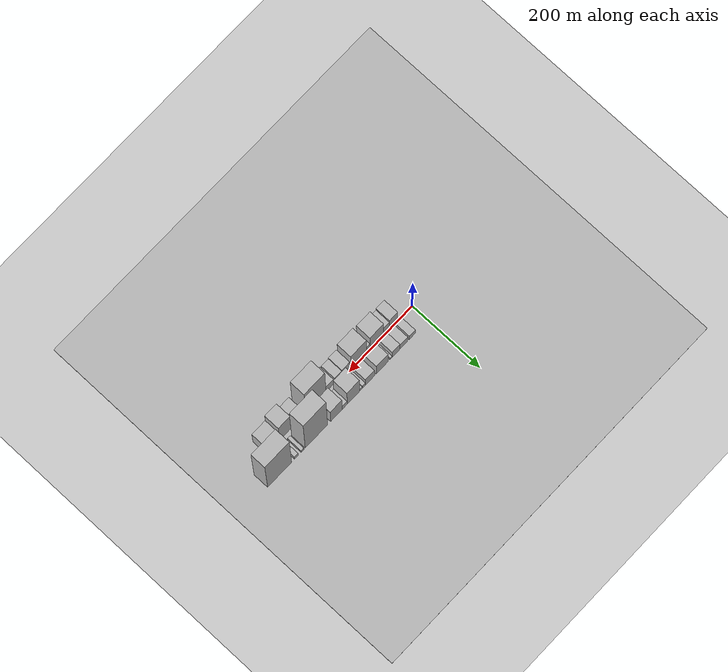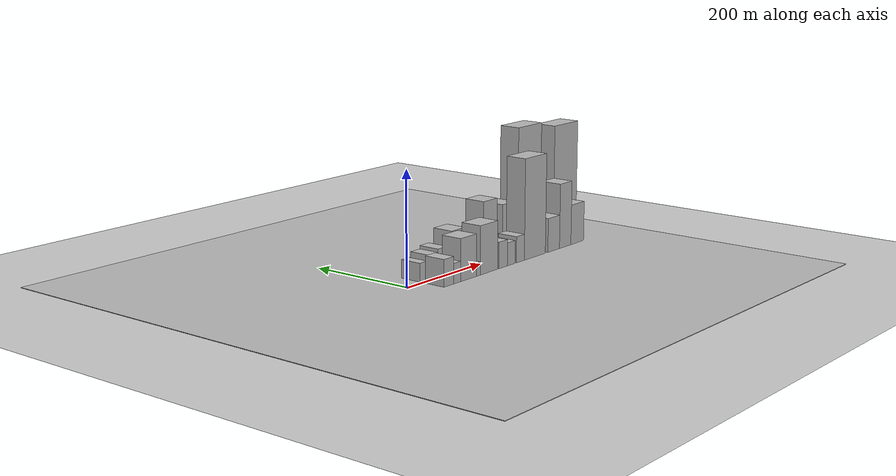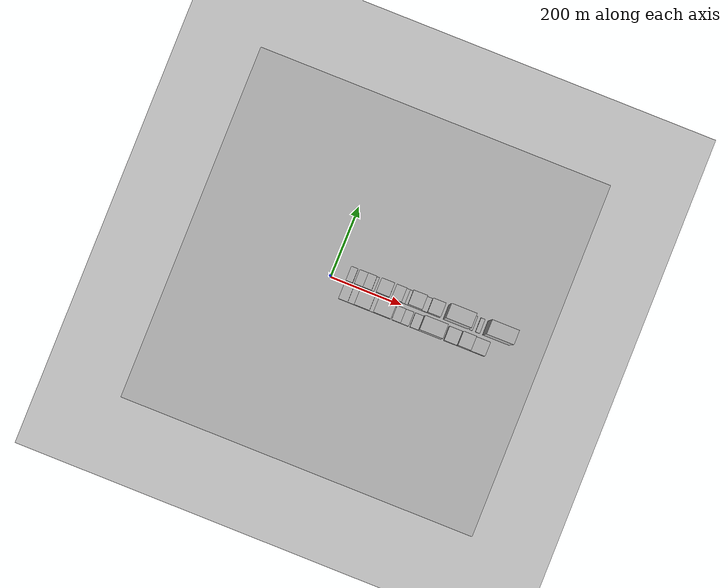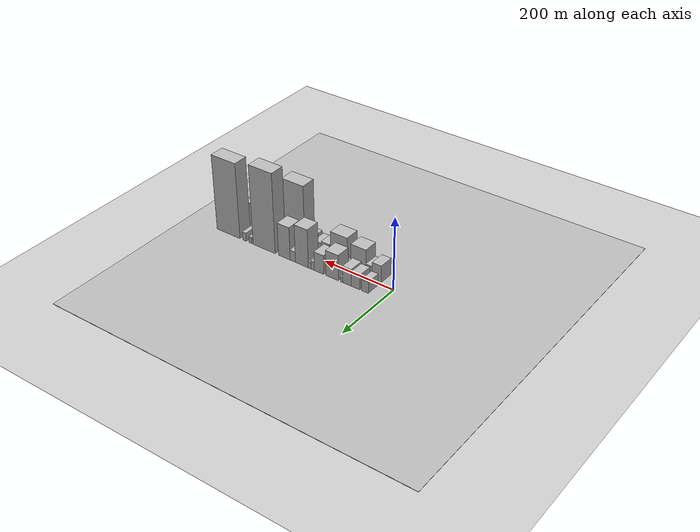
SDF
<?xml version="1.0" encoding="utf-8"?>

<sdf version="1.6">

   <world name="default">

      <gui fullscreen="0">

         <camera name="user_camera">

            <pose>-15 0 4.57585 0 0 0</pose>

            <view_controller>orbit</view_controller>

         </camera>

      </gui>

      <scene>

         <sky>

           <clouds>

             <speed>12</speed>

           </clouds>

         </sky>

         <ambient>0.4 0.4 0.4 1</ambient>

         <background>0.7 0.7 0.7 1</background>

         <shadows>1</shadows>

      </scene>

      <gravity>0 0 -9.8066</gravity>

      <magnetic_field>6e-06 2.3e-05 -4.2e-05</magnetic_field>

      <physics default="0" name="default_physics" type="ode">

         <ode>

            <solver>

               <type>quick</type>

               <iters>10</iters>

               <sor>1.0</sor>

               <use_dynamic_moi_rescaling>0</use_dynamic_moi_rescaling>

            </solver>

            <constraints>

               <cfm>0</cfm>

               <erp>0.2</erp>

               <contact_max_correcting_vel>100</contact_max_correcting_vel>

               <contact_surface_layer>0.001</contact_surface_layer>

            </constraints>

         </ode>

         <max_step_size>0.004</max_step_size>

         <real_time_factor>1</real_time_factor>

         <real_time_update_rate>250</real_time_update_rate>

      </physics>

      <light name="sun" type="directional">

         <cast_shadows>1</cast_shadows>

         <pose>0 0 10 0 0 0</pose>

         <diffuse>0.8 0.8 0.8 1</diffuse>

         <specular>0.2 0.2 0.2 1</specular>

         <attenuation>

            <range>1000</range>

            <constant>0.9</constant>

            <linear>0.01</linear>

            <quadratic>0.001</quadratic>

         </attenuation>

         <direction>-0.5 0.1 -0.9</direction>

      </light>

      <include>

         <name>ground_plane_1</name>

         <uri>model://HANNAS_ground_plane</uri>

         <pose>0 0 0  0 0 0</pose>

      </include>

      <include>

         <name>ground_plane_2</name>

         <uri>model://HANNAS_ground_plane</uri>

         <pose>100 0 0  0 0 0</pose>

      </include>

      <model name="building_1">

         <static>1</static>

         <pose frame="">49.6204 26.0000 0 0.000000 0.000000 1.570796</pose>

         <link name="link">

            <pose frame="">0 0 16.50 0 0 0</pose>

            <collision name="collision">

               <geometry>

                  <box>

                     <size>40.0000 19.2409 33.0000</size>

                  </box>

               </geometry>

               <max_contacts>10</max_contacts>

               <surface>

                  <contact>

                     <ode/>

                  </contact>

                  <bounce/>

                  <friction>

                     <torsional>

                        <ode/>

                     </torsional>

                     <ode/>

                  </friction>

               </surface>

            </collision>

            <visual name="visual">

               <cast_shadows>0</cast_shadows>

               <geometry>

                  <box>

                     <size>40.0000 19.2409 33.0000</size>

                  </box>

               </geometry>

               <material>

                  <script>

                     <uri>model://HANNAS_wall/materials/scripts</uri>

                     <uri>model://HANNAS_wall/materials/textures</uri>

                     <name>vrc/HANNAS_wall</name>

                  </script>

               </material>

            </visual>

            <self_collide>0</self_collide>

            <enable_wind>0</enable_wind>

            <kinematic>0</kinematic>

         </link>

      </model>

      <model name="building_2">

         <static>1</static>

         <pose frame="">76.3612 26.0000 0 0.000000 0.000000 1.570796</pose>

         <link name="link">

            <pose frame="">0 0 21.00 0 0 0</pose>

            <collision name="collision">

               <geometry>

                  <box>

                     <size>40.0000 24.2407 42.0000</size>

                  </box>

               </geometry>

               <max_contacts>10</max_contacts>

               <surface>

                  <contact>

                     <ode/>

                  </contact>

                  <bounce/>

                  <friction>

                     <torsional>

                        <ode/>

                     </torsional>

                     <ode/>

                  </friction>

               </surface>

            </collision>

            <visual name="visual">

               <cast_shadows>0</cast_shadows>

               <geometry>

                  <box>

                     <size>40.0000 24.2407 42.0000</size>

                  </box>

               </geometry>

               <material>

                  <script>

                     <uri>model://HANNAS_wall/materials/scripts</uri>

                     <uri>model://HANNAS_wall/materials/textures</uri>

                     <name>vrc/HANNAS_wall</name>

                  </script>

               </material>

            </visual>

            <self_collide>0</self_collide>

            <enable_wind>0</enable_wind>

            <kinematic>0</kinematic>

         </link>

      </model>

      <model name="building_3">

         <static>1</static>

         <pose frame="">100.8569 26.0000 0 0.000000 0.000000 1.570796</pose>

         <link name="link">

            <pose frame="">0 0 24.00 0 0 0</pose>

            <collision name="collision">

               <geometry>

                  <box>

                     <size>40.0000 24.7506 48.0000</size>

                  </box>

               </geometry>

               <max_contacts>10</max_contacts>

               <surface>

                  <contact>

                     <ode/>

                  </contact>

                  <bounce/>

                  <friction>

                     <torsional>

                        <ode/>

                     </torsional>

                     <ode/>

                  </friction>

               </surface>

            </collision>

            <visual name="visual">

               <cast_shadows>0</cast_shadows>

               <geometry>

                  <box>

                     <size>40.0000 24.7506 48.0000</size>

                  </box>

               </geometry>

               <material>

                  <script>

                     <uri>model://HANNAS_wall/materials/scripts</uri>

                     <uri>model://HANNAS_wall/materials/textures</uri>

                     <name>vrc/HANNAS_wall</name>

                  </script>

               </material>

            </visual>

            <self_collide>0</self_collide>

            <enable_wind>0</enable_wind>

            <kinematic>0</kinematic>

         </link>

      </model>

      <model name="building_4">

         <static>1</static>

         <pose frame="">116.6547 26.0000 0 0.000000 0.000000 1.570796</pose>

         <link name="link">

            <pose frame="">0 0 7.50 0 0 0</pose>

            <collision name="collision">

               <geometry>

                  <box>

                     <size>40.0000 6.8449 15.0000</size>

                  </box>

               </geometry>

               <max_contacts>10</max_contacts>

               <surface>

                  <contact>

                     <ode/>

                  </contact>

                  <bounce/>

                  <friction>

                     <torsional>

                        <ode/>

                     </torsional>

                     <ode/>

                  </friction>

               </surface>

            </collision>

            <visual name="visual">

               <cast_shadows>0</cast_shadows>

               <geometry>

                  <box>

                     <size>40.0000 6.8449 15.0000</size>

                  </box>

               </geometry>

               <material>

                  <script>

                     <uri>model://HANNAS_wall/materials/scripts</uri>

                     <uri>model://HANNAS_wall/materials/textures</uri>

                     <name>vrc/HANNAS_wall</name>

                  </script>

               </material>

            </visual>

            <self_collide>0</self_collide>

            <enable_wind>0</enable_wind>

            <kinematic>0</kinematic>

         </link>

      </model>

      <model name="building_5">

         <static>1</static>

         <pose frame="">144.6019 26.0000 0 0.000000 0.000000 1.570796</pose>

         <link name="link">

            <pose frame="">0 0 36.00 0 0 0</pose>

            <collision name="collision">

               <geometry>

                  <box>

                     <size>40.0000 37.0496 72.0000</size>

                  </box>

               </geometry>

               <max_contacts>10</max_contacts>

               <surface>

                  <contact>

                     <ode/>

                  </contact>

                  <bounce/>

                  <friction>

                     <torsional>

                        <ode/>

                     </torsional>

                     <ode/>

                  </friction>

               </surface>

            </collision>

            <visual name="visual">

               <cast_shadows>0</cast_shadows>

               <geometry>

                  <box>

                     <size>40.0000 37.0496 72.0000</size>

                  </box>

               </geometry>

               <material>

                  <script>

                     <uri>model://HANNAS_wall/materials/scripts</uri>

                     <uri>model://HANNAS_wall/materials/textures</uri>

                     <name>vrc/HANNAS_wall</name>

                  </script>

               </material>

            </visual>

            <self_collide>0</self_collide>

            <enable_wind>0</enable_wind>

            <kinematic>0</kinematic>

         </link>

      </model>

      <model name="building_6">

         <static>1</static>

         <pose frame="">183.3725 26.0000 0 0.000000 0.000000 1.570796</pose>

         <link name="link">

            <pose frame="">0 0 27.00 0 0 0</pose>

            <collision name="collision">

               <geometry>

                  <box>

                     <size>40.0000 28.4916 54.0000</size>

                  </box>

               </geometry>

               <max_contacts>10</max_contacts>

               <surface>

                  <contact>

                     <ode/>

                  </contact>

                  <bounce/>

                  <friction>

                     <torsional>

                        <ode/>

                     </torsional>

                     <ode/>

                  </friction>

               </surface>

            </collision>

            <visual name="visual">

               <cast_shadows>0</cast_shadows>

               <geometry>

                  <box>

                     <size>40.0000 28.4916 54.0000</size>

                  </box>

               </geometry>

               <material>

                  <script>

                     <uri>model://HANNAS_wall/materials/scripts</uri>

                     <uri>model://HANNAS_wall/materials/textures</uri>

                     <name>vrc/HANNAS_wall</name>

                  </script>

               </material>

            </visual>

            <self_collide>0</self_collide>

            <enable_wind>0</enable_wind>

            <kinematic>0</kinematic>

         </link>

      </model>

      <model name="building_7">

         <static>1</static>

         <pose frame="">202.6244 26.0000 0 0.000000 0.000000 1.570796</pose>

         <link name="link">

            <pose frame="">0 0 12.00 0 0 0</pose>

            <collision name="collision">

               <geometry>

                  <box>

                     <size>40.0000 10.0121 24.0000</size>

                  </box>

               </geometry>

               <max_contacts>10</max_contacts>

               <surface>

                  <contact>

                     <ode/>

                  </contact>

                  <bounce/>

                  <friction>

                     <torsional>

                        <ode/>

                     </torsional>

                     <ode/>

                  </friction>

               </surface>

            </collision>

            <visual name="visual">

               <cast_shadows>0</cast_shadows>

               <geometry>

                  <box>

                     <size>40.0000 10.0121 24.0000</size>

                  </box>

               </geometry>

               <material>

                  <script>

                     <uri>model://HANNAS_wall/materials/scripts</uri>

                     <uri>model://HANNAS_wall/materials/textures</uri>

                     <name>vrc/HANNAS_wall</name>

                  </script>

               </material>

            </visual>

            <self_collide>0</self_collide>

            <enable_wind>0</enable_wind>

            <kinematic>0</kinematic>

         </link>

      </model>

      <model name="building_8">

         <static>1</static>

         <pose frame="">211.6649 26.0000 0 0.000000 0.000000 1.570796</pose>

         <link name="link">

            <pose frame="">0 0 9.00 0 0 0</pose>

            <collision name="collision">

               <geometry>

                  <box>

                     <size>40.0000 8.0690 18.0000</size>

                  </box>

               </geometry>

               <max_contacts>10</max_contacts>

               <surface>

                  <contact>

                     <ode/>

                  </contact>

                  <bounce/>

                  <friction>

                     <torsional>

                        <ode/>

                     </torsional>

                     <ode/>

                  </friction>

               </surface>

            </collision>

            <visual name="visual">

               <cast_shadows>0</cast_shadows>

               <geometry>

                  <box>

                     <size>40.0000 8.0690 18.0000</size>

                  </box>

               </geometry>

               <material>

                  <script>

                     <uri>model://HANNAS_wall/materials/scripts</uri>

                     <uri>model://HANNAS_wall/materials/textures</uri>

                     <name>vrc/HANNAS_wall</name>

                  </script>

               </material>

            </visual>

            <self_collide>0</self_collide>

            <enable_wind>0</enable_wind>

            <kinematic>0</kinematic>

         </link>

      </model>

      <model name="building_9">

         <static>1</static>

         <pose frame="">235.2470 26.0000 0 0.000000 0.000000 1.570796</pose>

         <link name="link">

            <pose frame="">0 0 54.00 0 0 0</pose>

            <collision name="collision">

               <geometry>

                  <box>

                     <size>40.0000 39.0953 108.0000</size>

                  </box>

               </geometry>

               <max_contacts>10</max_contacts>

               <surface>

                  <contact>

                     <ode/>

                  </contact>

                  <bounce/>

                  <friction>

                     <torsional>

                        <ode/>

                     </torsional>

                     <ode/>

                  </friction>

               </surface>

            </collision>

            <visual name="visual">

               <cast_shadows>0</cast_shadows>

               <geometry>

                  <box>

                     <size>40.0000 39.0953 108.0000</size>

                  </box>

               </geometry>

               <material>

                  <script>

                     <uri>model://HANNAS_wall/materials/scripts</uri>

                     <uri>model://HANNAS_wall/materials/textures</uri>

                     <name>vrc/HANNAS_wall</name>

                  </script>

               </material>

            </visual>

            <self_collide>0</self_collide>

            <enable_wind>0</enable_wind>

            <kinematic>0</kinematic>

         </link>

      </model>

      <model name="building_10">

         <static>1</static>

         <pose frame="">262.7934 26.0000 0 0.000000 0.000000 1.570796</pose>

         <link name="link">

            <pose frame="">0 0 15.00 0 0 0</pose>

            <collision name="collision">

               <geometry>

                  <box>

                     <size>40.0000 15.9974 30.0000</size>

                  </box>

               </geometry>

               <max_contacts>10</max_contacts>

               <surface>

                  <contact>

                     <ode/>

                  </contact>

                  <bounce/>

                  <friction>

                     <torsional>

                        <ode/>

                     </torsional>

                     <ode/>

                  </friction>

               </surface>

            </collision>

            <visual name="visual">

               <cast_shadows>0</cast_shadows>

               <geometry>

                  <box>

                     <size>40.0000 15.9974 30.0000</size>

                  </box>

               </geometry>

               <material>

                  <script>

                     <uri>model://HANNAS_wall/materials/scripts</uri>

                     <uri>model://HANNAS_wall/materials/textures</uri>

                     <name>vrc/HANNAS_wall</name>

                  </script>

               </material>

            </visual>

            <self_collide>0</self_collide>

            <enable_wind>0</enable_wind>

            <kinematic>0</kinematic>

         </link>

      </model>

      <model name="building_11">

         <static>1</static>

         <pose frame="">288.8255 26.0000 0 0.000000 0.000000 1.570796</pose>

         <link name="link">

            <pose frame="">0 0 46.50 0 0 0</pose>

            <collision name="collision">

               <geometry>

                  <box>

                     <size>40.0000 36.0668 93.0000</size>

                  </box>

               </geometry>

               <max_contacts>10</max_contacts>

               <surface>

                  <contact>

                     <ode/>

                  </contact>

                  <bounce/>

                  <friction>

                     <torsional>

                        <ode/>

                     </torsional>

                     <ode/>

                  </friction>

               </surface>

            </collision>

            <visual name="visual">

               <cast_shadows>0</cast_shadows>

               <geometry>

                  <box>

                     <size>40.0000 36.0668 93.0000</size>

                  </box>

               </geometry>

               <material>

                  <script>

                     <uri>model://HANNAS_wall/materials/scripts</uri>

                     <uri>model://HANNAS_wall/materials/textures</uri>

                     <name>vrc/HANNAS_wall</name>

                  </script>

               </material>

            </visual>

            <self_collide>0</self_collide>

            <enable_wind>0</enable_wind>

            <kinematic>0</kinematic>

         </link>

      </model>

      <model name="building_12">

         <static>1</static>

         <pose frame="">351.8852 26.0000 0 0.000000 0.000000 1.570796</pose>

         <link name="link">

            <pose frame="">0 0 112.50 0 0 0</pose>

            <collision name="collision">

               <geometry>

                  <box>

                     <size>40.0000 70.0525 225.0000</size>

                  </box>

               </geometry>

               <max_contacts>10</max_contacts>

               <surface>

                  <contact>

                     <ode/>

                  </contact>

                  <bounce/>

                  <friction>

                     <torsional>

                        <ode/>

                     </torsional>

                     <ode/>

                  </friction>

               </surface>

            </collision>

            <visual name="visual">

               <cast_shadows>0</cast_shadows>

               <geometry>

                  <box>

                     <size>40.0000 70.0525 225.0000</size>

                  </box>

               </geometry>

               <material>

                  <script>

                     <uri>model://HANNAS_wall/materials/scripts</uri>

                     <uri>model://HANNAS_wall/materials/textures</uri>

                     <name>vrc/HANNAS_wall</name>

                  </script>

               </material>

            </visual>

            <self_collide>0</self_collide>

            <enable_wind>0</enable_wind>

            <kinematic>0</kinematic>

         </link>

      </model>

      <model name="building_13">

         <static>1</static>

         <pose frame="">395.2271 26.0000 0 0.000000 0.000000 1.570796</pose>

         <link name="link">

            <pose frame="">0 0 9.00 0 0 0</pose>

            <collision name="collision">

               <geometry>

                  <box>

                     <size>40.0000 8.6315 18.0000</size>

                  </box>

               </geometry>

               <max_contacts>10</max_contacts>

               <surface>

                  <contact>

                     <ode/>

                  </contact>

                  <bounce/>

                  <friction>

                     <torsional>

                        <ode/>

                     </torsional>

                     <ode/>

                  </friction>

               </surface>

            </collision>

            <visual name="visual">

               <cast_shadows>0</cast_shadows>

               <geometry>

                  <box>

                     <size>40.0000 8.6315 18.0000</size>

                  </box>

               </geometry>

               <material>

                  <script>

                     <uri>model://HANNAS_wall/materials/scripts</uri>

                     <uri>model://HANNAS_wall/materials/textures</uri>

                     <name>vrc/HANNAS_wall</name>

                  </script>

               </material>

            </visual>

            <self_collide>0</self_collide>

            <enable_wind>0</enable_wind>

            <kinematic>0</kinematic>

         </link>

      </model>

      <model name="building_14">

         <static>1</static>

         <pose frame="">414.3450 26.0000 0 0.000000 0.000000 1.570796</pose>

         <link name="link">

            <pose frame="">0 0 12.00 0 0 0</pose>

            <collision name="collision">

               <geometry>

                  <box>

                     <size>40.0000 11.6042 24.0000</size>

                  </box>

               </geometry>

               <max_contacts>10</max_contacts>

               <surface>

                  <contact>

                     <ode/>

                  </contact>

                  <bounce/>

                  <friction>

                     <torsional>

                        <ode/>

                     </torsional>

                     <ode/>

                  </friction>

               </surface>

            </collision>

            <visual name="visual">

               <cast_shadows>0</cast_shadows>

               <geometry>

                  <box>

                     <size>40.0000 11.6042 24.0000</size>

                  </box>

               </geometry>

               <material>

                  <script>

                     <uri>model://HANNAS_wall/materials/scripts</uri>

                     <uri>model://HANNAS_wall/materials/textures</uri>

                     <name>vrc/HANNAS_wall</name>

                  </script>

               </material>

            </visual>

            <self_collide>0</self_collide>

            <enable_wind>0</enable_wind>

            <kinematic>0</kinematic>

         </link>

      </model>

      <model name="building_15">

         <static>1</static>

         <pose frame="">466.5660 26.0000 0 0.000000 0.000000 1.570796</pose>

         <link name="link">

            <pose frame="">0 0 106.50 0 0 0</pose>

            <collision name="collision">

               <geometry>

                  <box>

                     <size>40.0000 74.8378 213.0000</size>

                  </box>

               </geometry>

               <max_contacts>10</max_contacts>

               <surface>

                  <contact>

                     <ode/>

                  </contact>

                  <bounce/>

                  <friction>

                     <torsional>

                        <ode/>

                     </torsional>

                     <ode/>

                  </friction>

               </surface>

            </collision>

            <visual name="visual">

               <cast_shadows>0</cast_shadows>

               <geometry>

                  <box>

                     <size>40.0000 74.8378 213.0000</size>

                  </box>

               </geometry>

               <material>

                  <script>

                     <uri>model://HANNAS_wall/materials/scripts</uri>

                     <uri>model://HANNAS_wall/materials/textures</uri>

                     <name>vrc/HANNAS_wall</name>

                  </script>

               </material>

            </visual>

            <self_collide>0</self_collide>

            <enable_wind>0</enable_wind>

            <kinematic>0</kinematic>

         </link>

      </model>

      <model name="building_16">

         <static>1</static>

         <pose frame="">53.1173 -26.0000 0 0.000000 0.000000 1.570796</pose>

         <link name="link">

            <pose frame="">0 0 24.00 0 0 0</pose>

            <collision name="collision">

               <geometry>

                  <box>

                     <size>40.0000 26.2346 48.0000</size>

                  </box>

               </geometry>

               <max_contacts>10</max_contacts>

               <surface>

                  <contact>

                     <ode/>

                  </contact>

                  <bounce/>

                  <friction>

                     <torsional>

                        <ode/>

                     </torsional>

                     <ode/>

                  </friction>

               </surface>

            </collision>

            <visual name="visual">

               <cast_shadows>0</cast_shadows>

               <geometry>

                  <box>

                     <size>40.0000 26.2346 48.0000</size>

                  </box>

               </geometry>

               <material>

                  <script>

                     <uri>model://HANNAS_wall/materials/scripts</uri>

                     <uri>model://HANNAS_wall/materials/textures</uri>

                     <name>vrc/HANNAS_wall</name>

                  </script>

               </material>

            </visual>

            <self_collide>0</self_collide>

            <enable_wind>0</enable_wind>

            <kinematic>0</kinematic>

         </link>

      </model>

      <model name="building_17">

         <static>1</static>

         <pose frame="">75.3128 -26.0000 0 0.000000 0.000000 1.570796</pose>

         <link name="link">

            <pose frame="">0 0 18.00 0 0 0</pose>

            <collision name="collision">

               <geometry>

                  <box>

                     <size>40.0000 18.1565 36.0000</size>

                  </box>

               </geometry>

               <max_contacts>10</max_contacts>

               <surface>

                  <contact>

                     <ode/>

                  </contact>

                  <bounce/>

                  <friction>

                     <torsional>

                        <ode/>

                     </torsional>

                     <ode/>

                  </friction>

               </surface>

            </collision>

            <visual name="visual">

               <cast_shadows>0</cast_shadows>

               <geometry>

                  <box>

                     <size>40.0000 18.1565 36.0000</size>

                  </box>

               </geometry>

               <material>

                  <script>

                     <uri>model://HANNAS_wall/materials/scripts</uri>

                     <uri>model://HANNAS_wall/materials/textures</uri>

                     <name>vrc/HANNAS_wall</name>

                  </script>

               </material>

            </visual>

            <self_collide>0</self_collide>

            <enable_wind>0</enable_wind>

            <kinematic>0</kinematic>

         </link>

      </model>

      <model name="building_18">

         <static>1</static>

         <pose frame="">106.0257 -26.0000 0 0.000000 0.000000 1.570796</pose>

         <link name="link">

            <pose frame="">0 0 37.50 0 0 0</pose>

            <collision name="collision">

               <geometry>

                  <box>

                     <size>40.0000 43.2693 75.0000</size>

                  </box>

               </geometry>

               <max_contacts>10</max_contacts>

               <surface>

                  <contact>

                     <ode/>

                  </contact>

                  <bounce/>

                  <friction>

                     <torsional>

                        <ode/>

                     </torsional>

                     <ode/>

                  </friction>

               </surface>

            </collision>

            <visual name="visual">

               <cast_shadows>0</cast_shadows>

               <geometry>

                  <box>

                     <size>40.0000 43.2693 75.0000</size>

                  </box>

               </geometry>

               <material>

                  <script>

                     <uri>model://HANNAS_wall/materials/scripts</uri>

                     <uri>model://HANNAS_wall/materials/textures</uri>

                     <name>vrc/HANNAS_wall</name>

                  </script>

               </material>

            </visual>

            <self_collide>0</self_collide>

            <enable_wind>0</enable_wind>

            <kinematic>0</kinematic>

         </link>

      </model>

      <model name="building_19">

         <static>1</static>

         <pose frame="">133.0763 -26.0000 0 0.000000 0.000000 1.570796</pose>

         <link name="link">

            <pose frame="">0 0 12.00 0 0 0</pose>

            <collision name="collision">

               <geometry>

                  <box>

                     <size>40.0000 10.8319 24.0000</size>

                  </box>

               </geometry>

               <max_contacts>10</max_contacts>

               <surface>

                  <contact>

                     <ode/>

                  </contact>

                  <bounce/>

                  <friction>

                     <torsional>

                        <ode/>

                     </torsional>

                     <ode/>

                  </friction>

               </surface>

            </collision>

            <visual name="visual">

               <cast_shadows>0</cast_shadows>

               <geometry>

                  <box>

                     <size>40.0000 10.8319 24.0000</size>

                  </box>

               </geometry>

               <material>

                  <script>

                     <uri>model://HANNAS_wall/materials/scripts</uri>

                     <uri>model://HANNAS_wall/materials/textures</uri>

                     <name>vrc/HANNAS_wall</name>

                  </script>

               </material>

            </visual>

            <self_collide>0</self_collide>

            <enable_wind>0</enable_wind>

            <kinematic>0</kinematic>

         </link>

      </model>

      <model name="building_20">

         <static>1</static>

         <pose frame="">163.0801 -26.0000 0 0.000000 0.000000 1.570796</pose>

         <link name="link">

            <pose frame="">0 0 43.50 0 0 0</pose>

            <collision name="collision">

               <geometry>

                  <box>

                     <size>40.0000 49.1758 87.0000</size>

                  </box>

               </geometry>

               <max_contacts>10</max_contacts>

               <surface>

                  <contact>

                     <ode/>

                  </contact>

                  <bounce/>

                  <friction>

                     <torsional>

                        <ode/>

                     </torsional>

                     <ode/>

                  </friction>

               </surface>

            </collision>

            <visual name="visual">

               <cast_shadows>0</cast_shadows>

               <geometry>

                  <box>

                     <size>40.0000 49.1758 87.0000</size>

                  </box>

               </geometry>

               <material>

                  <script>

                     <uri>model://HANNAS_wall/materials/scripts</uri>

                     <uri>model://HANNAS_wall/materials/textures</uri>

                     <name>vrc/HANNAS_wall</name>

                  </script>

               </material>

            </visual>

            <self_collide>0</self_collide>

            <enable_wind>0</enable_wind>

            <kinematic>0</kinematic>

         </link>

      </model>

      <model name="building_21">

         <static>1</static>

         <pose frame="">203.2652 -26.0000 0 0.000000 0.000000 1.570796</pose>

         <link name="link">

            <pose frame="">0 0 24.00 0 0 0</pose>

            <collision name="collision">

               <geometry>

                  <box>

                     <size>40.0000 25.1944 48.0000</size>

                  </box>

               </geometry>

               <max_contacts>10</max_contacts>

               <surface>

                  <contact>

                     <ode/>

                  </contact>

                  <bounce/>

                  <friction>

                     <torsional>

                        <ode/>

                     </torsional>

                     <ode/>

                  </friction>

               </surface>

            </collision>

            <visual name="visual">

               <cast_shadows>0</cast_shadows>

               <geometry>

                  <box>

                     <size>40.0000 25.1944 48.0000</size>

                  </box>

               </geometry>

               <material>

                  <script>

                     <uri>model://HANNAS_wall/materials/scripts</uri>

                     <uri>model://HANNAS_wall/materials/textures</uri>

                     <name>vrc/HANNAS_wall</name>

                  </script>

               </material>

            </visual>

            <self_collide>0</self_collide>

            <enable_wind>0</enable_wind>

            <kinematic>0</kinematic>

         </link>

      </model>

      <model name="building_22">

         <static>1</static>

         <pose frame="">227.1157 -26.0000 0 0.000000 0.000000 1.570796</pose>

         <link name="link">

            <pose frame="">0 0 21.00 0 0 0</pose>

            <collision name="collision">

               <geometry>

                  <box>

                     <size>40.0000 22.5067 42.0000</size>

                  </box>

               </geometry>

               <max_contacts>10</max_contacts>

               <surface>

                  <contact>

                     <ode/>

                  </contact>

                  <bounce/>

                  <friction>

                     <torsional>

                        <ode/>

                     </torsional>

                     <ode/>

                  </friction>

               </surface>

            </collision>

            <visual name="visual">

               <cast_shadows>0</cast_shadows>

               <geometry>

                  <box>

                     <size>40.0000 22.5067 42.0000</size>

                  </box>

               </geometry>

               <material>

                  <script>

                     <uri>model://HANNAS_wall/materials/scripts</uri>

                     <uri>model://HANNAS_wall/materials/textures</uri>

                     <name>vrc/HANNAS_wall</name>

                  </script>

               </material>

            </visual>

            <self_collide>0</self_collide>

            <enable_wind>0</enable_wind>

            <kinematic>0</kinematic>

         </link>

      </model>

      <model name="building_23">

         <static>1</static>

         <pose frame="">254.3784 -26.0000 0 0.000000 0.000000 1.570796</pose>

         <link name="link">

            <pose frame="">0 0 24.00 0 0 0</pose>

            <collision name="collision">

               <geometry>

                  <box>

                     <size>40.0000 24.0185 48.0000</size>

                  </box>

               </geometry>

               <max_contacts>10</max_contacts>

               <surface>

                  <contact>

                     <ode/>

                  </contact>

                  <bounce/>

                  <friction>

                     <torsional>

                        <ode/>

                     </torsional>

                     <ode/>

                  </friction>

               </surface>

            </collision>

            <visual name="visual">

               <cast_shadows>0</cast_shadows>

               <geometry>

                  <box>

                     <size>40.0000 24.0185 48.0000</size>

                  </box>

               </geometry>

               <material>

                  <script>

                     <uri>model://HANNAS_wall/materials/scripts</uri>

                     <uri>model://HANNAS_wall/materials/textures</uri>

                     <name>vrc/HANNAS_wall</name>

                  </script>

               </material>

            </visual>

            <self_collide>0</self_collide>

            <enable_wind>0</enable_wind>

            <kinematic>0</kinematic>

         </link>

      </model>

      <model name="building_24">

         <static>1</static>

         <pose frame="">298.4039 -26.0000 0 0.000000 0.000000 1.570796</pose>

         <link name="link">

            <pose frame="">0 0 91.50 0 0 0</pose>

            <collision name="collision">

               <geometry>

                  <box>

                     <size>40.0000 64.0326 183.0000</size>

                  </box>

               </geometry>

               <max_contacts>10</max_contacts>

               <surface>

                  <contact>

                     <ode/>

                  </contact>

                  <bounce/>

                  <friction>

                     <torsional>

                        <ode/>

                     </torsional>

                     <ode/>

                  </friction>

               </surface>

            </collision>

            <visual name="visual">

               <cast_shadows>0</cast_shadows>

               <geometry>

                  <box>

                     <size>40.0000 64.0326 183.0000</size>

                  </box>

               </geometry>

               <material>

                  <script>

                     <uri>model://HANNAS_wall/materials/scripts</uri>

                     <uri>model://HANNAS_wall/materials/textures</uri>

                     <name>vrc/HANNAS_wall</name>

                  </script>

               </material>

            </visual>

            <self_collide>0</self_collide>

            <enable_wind>0</enable_wind>

            <kinematic>0</kinematic>

         </link>

      </model>

      <model name="building_25">

         <static>1</static>

         <pose frame="">356.6810 -26.0000 0 0.000000 0.000000 1.570796</pose>

         <link name="link">

            <pose frame="">0 0 31.50 0 0 0</pose>

            <collision name="collision">

               <geometry>

                  <box>

                     <size>40.0000 36.5215 63.0000</size>

                  </box>

               </geometry>

               <max_contacts>10</max_contacts>

               <surface>

                  <contact>

                     <ode/>

                  </contact>

                  <bounce/>

                  <friction>

                     <torsional>

                        <ode/>

                     </torsional>

                     <ode/>

                  </friction>

               </surface>

            </collision>

            <visual name="visual">

               <cast_shadows>0</cast_shadows>

               <geometry>

                  <box>

                     <size>40.0000 36.5215 63.0000</size>

                  </box>

               </geometry>

               <material>

                  <script>

                     <uri>model://HANNAS_wall/materials/scripts</uri>

                     <uri>model://HANNAS_wall/materials/textures</uri>

                     <name>vrc/HANNAS_wall</name>

                  </script>

               </material>

            </visual>

            <self_collide>0</self_collide>

            <enable_wind>0</enable_wind>

            <kinematic>0</kinematic>

         </link>

      </model>

      <model name="building_26">

         <static>1</static>

         <pose frame="">393.1752 -26.0000 0 0.000000 0.000000 1.570796</pose>

         <link name="link">

            <pose frame="">0 0 60.00 0 0 0</pose>

            <collision name="collision">

               <geometry>

                  <box>

                     <size>40.0000 36.4668 120.0000</size>

                  </box>

               </geometry>

               <max_contacts>10</max_contacts>

               <surface>

                  <contact>

                     <ode/>

                  </contact>

                  <bounce/>

                  <friction>

                     <torsional>

                        <ode/>

                     </torsional>

                     <ode/>

                  </friction>

               </surface>

            </collision>

            <visual name="visual">

               <cast_shadows>0</cast_shadows>

               <geometry>

                  <box>

                     <size>40.0000 36.4668 120.0000</size>

                  </box>

               </geometry>

               <material>

                  <script>

                     <uri>model://HANNAS_wall/materials/scripts</uri>

                     <uri>model://HANNAS_wall/materials/textures</uri>

                     <name>vrc/HANNAS_wall</name>

                  </script>

               </material>

            </visual>

            <self_collide>0</self_collide>

            <enable_wind>0</enable_wind>

            <kinematic>0</kinematic>

         </link>

      </model>

      <model name="building_27">

         <static>1</static>

         <pose frame="">432.2530 -26.0000 0 0.000000 0.000000 1.570796</pose>

         <link name="link">

            <pose frame="">0 0 37.50 0 0 0</pose>

            <collision name="collision">

               <geometry>

                  <box>

                     <size>40.0000 41.6888 75.0000</size>

                  </box>

               </geometry>

               <max_contacts>10</max_contacts>

               <surface>

                  <contact>

                     <ode/>

                  </contact>

                  <bounce/>

                  <friction>

                     <torsional>

                        <ode/>

                     </torsional>

                     <ode/>

                  </friction>

               </surface>

            </collision>

            <visual name="visual">

               <cast_shadows>0</cast_shadows>

               <geometry>

                  <box>

                     <size>40.0000 41.6888 75.0000</size>

                  </box>

               </geometry>

               <material>

                  <script>

                     <uri>model://HANNAS_wall/materials/scripts</uri>

                     <uri>model://HANNAS_wall/materials/textures</uri>

                     <name>vrc/HANNAS_wall</name>

                  </script>

               </material>

            </visual>

            <self_collide>0</self_collide>

            <enable_wind>0</enable_wind>

            <kinematic>0</kinematic>

         </link>

      </model>

   </world>

</sdf>

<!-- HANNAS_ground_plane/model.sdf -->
<sdf version="1.4">
<model name="HANNAS_ground_plane">
  <static>true</static>
    <link name="link">
      <collision name="collision">
        <geometry>
          <plane>
            <normal>0 0 1</normal>
            <size>1000 1000</size>
          </plane>
        </geometry>
        <surface>
          <friction>
            <ode>
              <mu>100</mu>
              <mu2>50</mu2>
            </ode>
          </friction>
        </surface>
      </collision>
      <visual name="visual">
        <cast_shadows>false</cast_shadows>
        <geometry>
          <plane>
            <normal>0 0 1</normal>
            <size>1000 1000</size>
          </plane>
        </geometry>
        <material>
          <script>
            <uri>model://HANNAS_ground_plane/materials/scripts/HANNAS_ground_plane.material</uri>
	    <uri>model://HANNAS_ground_plane/materials/textures</uri>
            <name>HANNASGroundPlane/Image</name>
          </script>
        </material>
      </visual>
    </link>
  </model>
</sdf>
